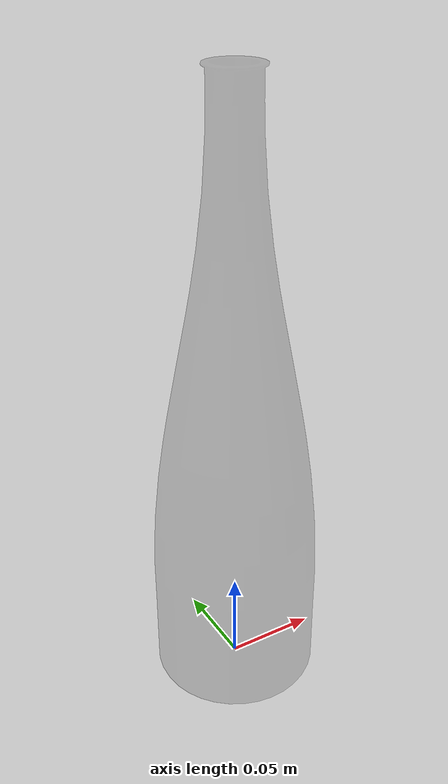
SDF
<?xml version='1.0'?>
<sdf version="1.5">
  <model name="bottle"> <!-- Very important to change-->
    <static>false</static>
    <pose>0 0 0 0 0 0</pose> <!-- Translation: X Y Z and Rotation: Roll Pitch Yaw (In Radian)-->
    <link name="body">

    <inertial> >
    <mass>0.301</mass>
    <pose>-0.003 -0.024 118.081 0 0 0</pose>
      <inertia>
        <ixx>0.003</ixx>
        <ixy>4.33e-8</ixy>
        <ixz>-3.65e-8</ixz>
        <iyy>0.003</iyy>
        <iyz>-2.57e-7</iyz>
        <izz>3.88e-4</izz>
      </inertia>
    </inertial>

       <collision name="collision"> <!-- You can use mesh like below -->
        <geometry>
          <mesh>
             <uri>/home/sorox23/robotic_ws/master_thesis_ws/src/property_based_tester/environment/models/bottle/meshes/bottle.stl</uri>
            <scale>0.001 0.001 0.001</scale>
          </mesh>
        </geometry>
      </collision>

      <visual name="visual">
      <transparency>0.8</transparency>
        <geometry>
          <mesh>
             <uri>/home/sorox23/robotic_ws/master_thesis_ws/src/property_based_tester/environment/models/bottle/meshes/bottle.stl</uri>
            <scale>0.001 0.001 0.001</scale>
          </mesh>
        </geometry>

        <material>
          <script>
             <uri>/home/sorox23/robotic_ws/master_thesis_ws/src/property_based_tester/environment/models/bottle/materials/scripts</uri>
             <uri>/home/sorox23/robotic_ws/master_thesis_ws/src/property_based_tester/environment/models/bottle/materials/textures</uri>
             <name>Gazebo/FlatBlack</name>
          </script>
        </material>
      </visual>
    </link>
  </model>
</sdf>
